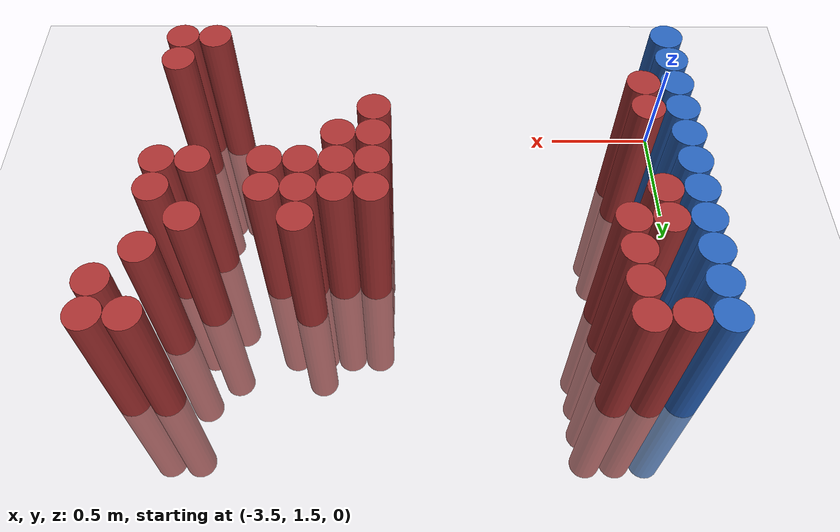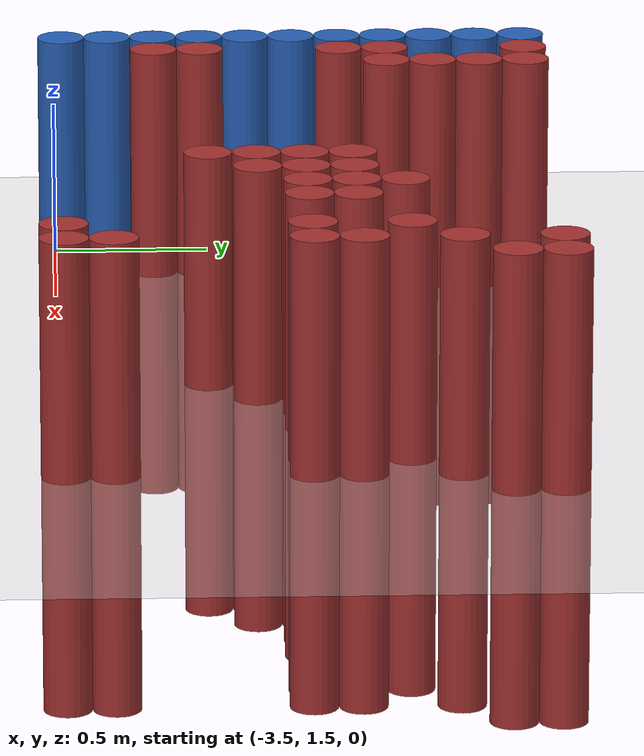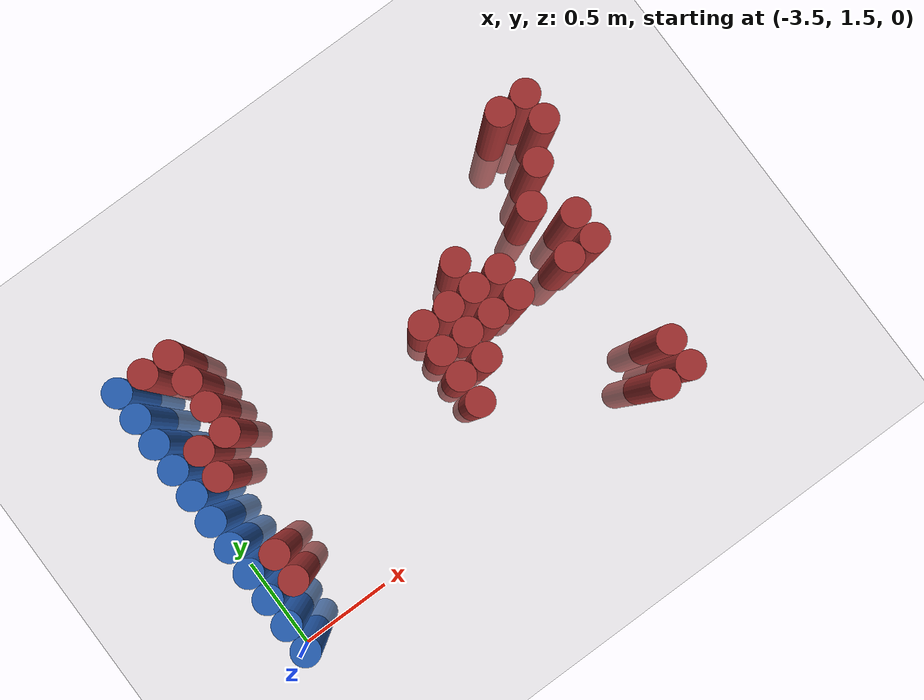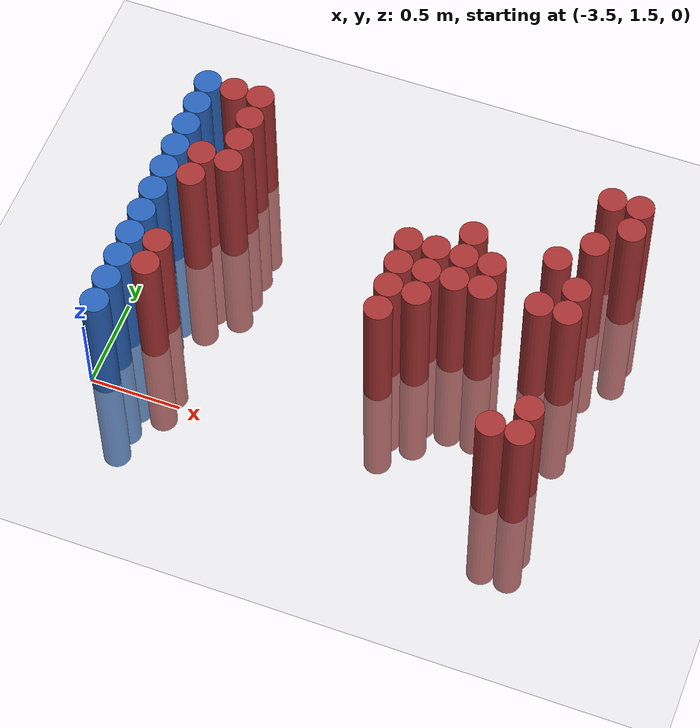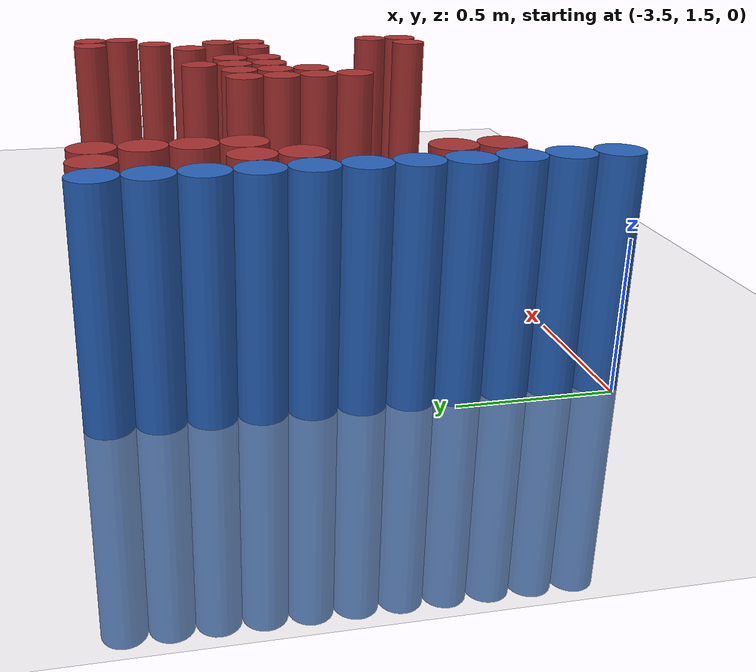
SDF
<sdf version="1.6">
 <world name="default">
  <model name="ground_plane">
   <static>1</static>
   <link name="link">
    <collision name="collision">
     <geometry><plane><normal>0 0 1</normal><size>100 100</size></plane></geometry>
     <surface><friction><ode><mu>100</mu><mu2>50</mu2></ode></friction></surface>
    </collision>
    <visual name="visual">
     <cast_shadows>0</cast_shadows>
     <geometry><plane><normal>0 0 1</normal><size>100 100</size></plane></geometry>
     <material>
      <script><uri>file://media/materials/scripts/gazebo.material</uri><name>Gazebo/Grey</name></script>
     </material>
    </visual>
   </link>
  </model>
  <model name="unit_cylinder_135">
   <static>1</static>
   <pose>-3.425000 1.525000 0.000000 0.000000 0.000000 0.000000</pose>
   <link name="link">
    <inertial>
     <mass>1</mass>
     <inertia><ixx>0.145833</ixx><ixy>0</ixy><ixz>0</ixz><iyy>0.145833</iyy><iyz>0</iyz><izz>0.125</izz></inertia>
    </inertial>
    <collision name="collision">
     <geometry><cylinder><radius>0.075000</radius><length>1.5</length></cylinder></geometry>
    </collision>
    <visual name="visual">
     <geometry><cylinder><radius>0.075000</radius><length>1.5</length></cylinder></geometry>
     <material>
      <ambient>0.152000 0.379000 0.720000 1</ambient>
      <diffuse>0.152000 0.379000 0.720000 1</diffuse>
     </material>
     <material>
      <script><name>Gazebo/Grey</name><uri>file://media/materials/scripts/gazebo.material</uri></script>
     </material>
    </visual>
   </link>
  </model>
  <model name="unit_cylinder_137">
   <static>1</static>
   <pose>-3.425000 1.675000 0.000000 0.000000 0.000000 0.000000</pose>
   <link name="link">
    <inertial>
     <mass>1</mass>
     <inertia><ixx>0.145833</ixx><ixy>0</ixy><ixz>0</ixz><iyy>0.145833</iyy><iyz>0</iyz><izz>0.125</izz></inertia>
    </inertial>
    <collision name="collision">
     <geometry><cylinder><radius>0.075000</radius><length>1.5</length></cylinder></geometry>
    </collision>
    <visual name="visual">
     <geometry><cylinder><radius>0.075000</radius><length>1.5</length></cylinder></geometry>
     <material>
      <ambient>0.152000 0.379000 0.720000 1</ambient>
      <diffuse>0.152000 0.379000 0.720000 1</diffuse>
     </material>
     <material>
      <script><name>Gazebo/Grey</name><uri>file://media/materials/scripts/gazebo.material</uri></script>
     </material>
    </visual>
   </link>
  </model>
  <model name="unit_cylinder_139">
   <static>1</static>
   <pose>-3.425000 1.825000 0.000000 0.000000 0.000000 0.000000</pose>
   <link name="link">
    <inertial>
     <mass>1</mass>
     <inertia><ixx>0.145833</ixx><ixy>0</ixy><ixz>0</ixz><iyy>0.145833</iyy><iyz>0</iyz><izz>0.125</izz></inertia>
    </inertial>
    <collision name="collision">
     <geometry><cylinder><radius>0.075000</radius><length>1.5</length></cylinder></geometry>
    </collision>
    <visual name="visual">
     <geometry><cylinder><radius>0.075000</radius><length>1.5</length></cylinder></geometry>
     <material>
      <ambient>0.152000 0.379000 0.720000 1</ambient>
      <diffuse>0.152000 0.379000 0.720000 1</diffuse>
     </material>
     <material>
      <script><name>Gazebo/Grey</name><uri>file://media/materials/scripts/gazebo.material</uri></script>
     </material>
    </visual>
   </link>
  </model>
  <model name="unit_cylinder_141">
   <static>1</static>
   <pose>-3.425000 1.975000 0.000000 0.000000 0.000000 0.000000</pose>
   <link name="link">
    <inertial>
     <mass>1</mass>
     <inertia><ixx>0.145833</ixx><ixy>0</ixy><ixz>0</ixz><iyy>0.145833</iyy><iyz>0</iyz><izz>0.125</izz></inertia>
    </inertial>
    <collision name="collision">
     <geometry><cylinder><radius>0.075000</radius><length>1.5</length></cylinder></geometry>
    </collision>
    <visual name="visual">
     <geometry><cylinder><radius>0.075000</radius><length>1.5</length></cylinder></geometry>
     <material>
      <ambient>0.152000 0.379000 0.720000 1</ambient>
      <diffuse>0.152000 0.379000 0.720000 1</diffuse>
     </material>
     <material>
      <script><name>Gazebo/Grey</name><uri>file://media/materials/scripts/gazebo.material</uri></script>
     </material>
    </visual>
   </link>
  </model>
  <model name="unit_cylinder_143">
   <static>1</static>
   <pose>-3.425000 2.125000 0.000000 0.000000 0.000000 0.000000</pose>
   <link name="link">
    <inertial>
     <mass>1</mass>
     <inertia><ixx>0.145833</ixx><ixy>0</ixy><ixz>0</ixz><iyy>0.145833</iyy><iyz>0</iyz><izz>0.125</izz></inertia>
    </inertial>
    <collision name="collision">
     <geometry><cylinder><radius>0.075000</radius><length>1.5</length></cylinder></geometry>
    </collision>
    <visual name="visual">
     <geometry><cylinder><radius>0.075000</radius><length>1.5</length></cylinder></geometry>
     <material>
      <ambient>0.152000 0.379000 0.720000 1</ambient>
      <diffuse>0.152000 0.379000 0.720000 1</diffuse>
     </material>
     <material>
      <script><name>Gazebo/Grey</name><uri>file://media/materials/scripts/gazebo.material</uri></script>
     </material>
    </visual>
   </link>
  </model>
  <model name="unit_cylinder_145">
   <static>1</static>
   <pose>-3.425000 2.275000 0.000000 0.000000 0.000000 0.000000</pose>
   <link name="link">
    <inertial>
     <mass>1</mass>
     <inertia><ixx>0.145833</ixx><ixy>0</ixy><ixz>0</ixz><iyy>0.145833</iyy><iyz>0</iyz><izz>0.125</izz></inertia>
    </inertial>
    <collision name="collision">
     <geometry><cylinder><radius>0.075000</radius><length>1.5</length></cylinder></geometry>
    </collision>
    <visual name="visual">
     <geometry><cylinder><radius>0.075000</radius><length>1.5</length></cylinder></geometry>
     <material>
      <ambient>0.152000 0.379000 0.720000 1</ambient>
      <diffuse>0.152000 0.379000 0.720000 1</diffuse>
     </material>
     <material>
      <script><name>Gazebo/Grey</name><uri>file://media/materials/scripts/gazebo.material</uri></script>
     </material>
    </visual>
   </link>
  </model>
  <model name="unit_cylinder_147">
   <static>1</static>
   <pose>-3.425000 2.425000 0.000000 0.000000 0.000000 0.000000</pose>
   <link name="link">
    <inertial>
     <mass>1</mass>
     <inertia><ixx>0.145833</ixx><ixy>0</ixy><ixz>0</ixz><iyy>0.145833</iyy><iyz>0</iyz><izz>0.125</izz></inertia>
    </inertial>
    <collision name="collision">
     <geometry><cylinder><radius>0.075000</radius><length>1.5</length></cylinder></geometry>
    </collision>
    <visual name="visual">
     <geometry><cylinder><radius>0.075000</radius><length>1.5</length></cylinder></geometry>
     <material>
      <ambient>0.152000 0.379000 0.720000 1</ambient>
      <diffuse>0.152000 0.379000 0.720000 1</diffuse>
     </material>
     <material>
      <script><name>Gazebo/Grey</name><uri>file://media/materials/scripts/gazebo.material</uri></script>
     </material>
    </visual>
   </link>
  </model>
  <model name="unit_cylinder_149">
   <static>1</static>
   <pose>-3.425000 2.575000 0.000000 0.000000 0.000000 0.000000</pose>
   <link name="link">
    <inertial>
     <mass>1</mass>
     <inertia><ixx>0.145833</ixx><ixy>0</ixy><ixz>0</ixz><iyy>0.145833</iyy><iyz>0</iyz><izz>0.125</izz></inertia>
    </inertial>
    <collision name="collision">
     <geometry><cylinder><radius>0.075000</radius><length>1.5</length></cylinder></geometry>
    </collision>
    <visual name="visual">
     <geometry><cylinder><radius>0.075000</radius><length>1.5</length></cylinder></geometry>
     <material>
      <ambient>0.152000 0.379000 0.720000 1</ambient>
      <diffuse>0.152000 0.379000 0.720000 1</diffuse>
     </material>
     <material>
      <script><name>Gazebo/Grey</name><uri>file://media/materials/scripts/gazebo.material</uri></script>
     </material>
    </visual>
   </link>
  </model>
  <model name="unit_cylinder_151">
   <static>1</static>
   <pose>-3.425000 2.725000 0.000000 0.000000 0.000000 0.000000</pose>
   <link name="link">
    <inertial>
     <mass>1</mass>
     <inertia><ixx>0.145833</ixx><ixy>0</ixy><ixz>0</ixz><iyy>0.145833</iyy><iyz>0</iyz><izz>0.125</izz></inertia>
    </inertial>
    <collision name="collision">
     <geometry><cylinder><radius>0.075000</radius><length>1.5</length></cylinder></geometry>
    </collision>
    <visual name="visual">
     <geometry><cylinder><radius>0.075000</radius><length>1.5</length></cylinder></geometry>
     <material>
      <ambient>0.152000 0.379000 0.720000 1</ambient>
      <diffuse>0.152000 0.379000 0.720000 1</diffuse>
     </material>
     <material>
      <script><name>Gazebo/Grey</name><uri>file://media/materials/scripts/gazebo.material</uri></script>
     </material>
    </visual>
   </link>
  </model>
  <model name="unit_cylinder_153">
   <static>1</static>
   <pose>-3.425000 2.875000 0.000000 0.000000 0.000000 0.000000</pose>
   <link name="link">
    <inertial>
     <mass>1</mass>
     <inertia><ixx>0.145833</ixx><ixy>0</ixy><ixz>0</ixz><iyy>0.145833</iyy><iyz>0</iyz><izz>0.125</izz></inertia>
    </inertial>
    <collision name="collision">
     <geometry><cylinder><radius>0.075000</radius><length>1.5</length></cylinder></geometry>
    </collision>
    <visual name="visual">
     <geometry><cylinder><radius>0.075000</radius><length>1.5</length></cylinder></geometry>
     <material>
      <ambient>0.152000 0.379000 0.720000 1</ambient>
      <diffuse>0.152000 0.379000 0.720000 1</diffuse>
     </material>
     <material>
      <script><name>Gazebo/Grey</name><uri>file://media/materials/scripts/gazebo.material</uri></script>
     </material>
    </visual>
   </link>
  </model>
  <model name="unit_cylinder_155">
   <static>1</static>
   <pose>-3.425000 3.025000 0.000000 0.000000 0.000000 0.000000</pose>
   <link name="link">
    <inertial>
     <mass>1</mass>
     <inertia><ixx>0.145833</ixx><ixy>0</ixy><ixz>0</ixz><iyy>0.145833</iyy><iyz>0</iyz><izz>0.125</izz></inertia>
    </inertial>
    <collision name="collision">
     <geometry><cylinder><radius>0.075000</radius><length>1.5</length></cylinder></geometry>
    </collision>
    <visual name="visual">
     <geometry><cylinder><radius>0.075000</radius><length>1.5</length></cylinder></geometry>
     <material>
      <ambient>0.152000 0.379000 0.720000 1</ambient>
      <diffuse>0.152000 0.379000 0.720000 1</diffuse>
     </material>
     <material>
      <script><name>Gazebo/Grey</name><uri>file://media/materials/scripts/gazebo.material</uri></script>
     </material>
    </visual>
   </link>
  </model>
  <model name="unit_cylinder_231">
   <static>1</static>
   <pose>-3.425000 1.525000 0.000000 0.000000 0.000000 0.000000</pose>
   <link name="link">
    <inertial>
     <mass>1</mass>
     <inertia><ixx>0.145833</ixx><ixy>0</ixy><ixz>0</ixz><iyy>0.145833</iyy><iyz>0</iyz><izz>0.125</izz></inertia>
    </inertial>
    <collision name="collision">
     <geometry><cylinder><radius>0.075000</radius><length>1.5</length></cylinder></geometry>
    </collision>
    <visual name="visual">
     <geometry><cylinder><radius>0.075000</radius><length>1.5</length></cylinder></geometry>
     <material>
      <ambient>0.152000 0.379000 0.720000 1</ambient>
      <diffuse>0.152000 0.379000 0.720000 1</diffuse>
     </material>
     <material>
      <script><name>Gazebo/Grey</name><uri>file://media/materials/scripts/gazebo.material</uri></script>
     </material>
    </visual>
   </link>
  </model>
  <model name="unit_cylinder_232">
   <static>1</static>
   <pose>-3.425000 1.675000 0.000000 0.000000 0.000000 0.000000</pose>
   <link name="link">
    <inertial>
     <mass>1</mass>
     <inertia><ixx>0.145833</ixx><ixy>0</ixy><ixz>0</ixz><iyy>0.145833</iyy><iyz>0</iyz><izz>0.125</izz></inertia>
    </inertial>
    <collision name="collision">
     <geometry><cylinder><radius>0.075000</radius><length>1.5</length></cylinder></geometry>
    </collision>
    <visual name="visual">
     <geometry><cylinder><radius>0.075000</radius><length>1.5</length></cylinder></geometry>
     <material>
      <ambient>0.152000 0.379000 0.720000 1</ambient>
      <diffuse>0.152000 0.379000 0.720000 1</diffuse>
     </material>
     <material>
      <script><name>Gazebo/Grey</name><uri>file://media/materials/scripts/gazebo.material</uri></script>
     </material>
    </visual>
   </link>
  </model>
  <model name="unit_cylinder_233">
   <static>1</static>
   <pose>-3.425000 1.825000 0.000000 0.000000 0.000000 0.000000</pose>
   <link name="link">
    <inertial>
     <mass>1</mass>
     <inertia><ixx>0.145833</ixx><ixy>0</ixy><ixz>0</ixz><iyy>0.145833</iyy><iyz>0</iyz><izz>0.125</izz></inertia>
    </inertial>
    <collision name="collision">
     <geometry><cylinder><radius>0.075000</radius><length>1.5</length></cylinder></geometry>
    </collision>
    <visual name="visual">
     <geometry><cylinder><radius>0.075000</radius><length>1.5</length></cylinder></geometry>
     <material>
      <ambient>0.152000 0.379000 0.720000 1</ambient>
      <diffuse>0.152000 0.379000 0.720000 1</diffuse>
     </material>
     <material>
      <script><name>Gazebo/Grey</name><uri>file://media/materials/scripts/gazebo.material</uri></script>
     </material>
    </visual>
   </link>
  </model>
  <model name="unit_cylinder_234">
   <static>1</static>
   <pose>-3.425000 1.975000 0.000000 0.000000 0.000000 0.000000</pose>
   <link name="link">
    <inertial>
     <mass>1</mass>
     <inertia><ixx>0.145833</ixx><ixy>0</ixy><ixz>0</ixz><iyy>0.145833</iyy><iyz>0</iyz><izz>0.125</izz></inertia>
    </inertial>
    <collision name="collision">
     <geometry><cylinder><radius>0.075000</radius><length>1.5</length></cylinder></geometry>
    </collision>
    <visual name="visual">
     <geometry><cylinder><radius>0.075000</radius><length>1.5</length></cylinder></geometry>
     <material>
      <ambient>0.152000 0.379000 0.720000 1</ambient>
      <diffuse>0.152000 0.379000 0.720000 1</diffuse>
     </material>
     <material>
      <script><name>Gazebo/Grey</name><uri>file://media/materials/scripts/gazebo.material</uri></script>
     </material>
    </visual>
   </link>
  </model>
  <model name="unit_cylinder_235">
   <static>1</static>
   <pose>-3.425000 2.125000 0.000000 0.000000 0.000000 0.000000</pose>
   <link name="link">
    <inertial>
     <mass>1</mass>
     <inertia><ixx>0.145833</ixx><ixy>0</ixy><ixz>0</ixz><iyy>0.145833</iyy><iyz>0</iyz><izz>0.125</izz></inertia>
    </inertial>
    <collision name="collision">
     <geometry><cylinder><radius>0.075000</radius><length>1.5</length></cylinder></geometry>
    </collision>
    <visual name="visual">
     <geometry><cylinder><radius>0.075000</radius><length>1.5</length></cylinder></geometry>
     <material>
      <ambient>0.152000 0.379000 0.720000 1</ambient>
      <diffuse>0.152000 0.379000 0.720000 1</diffuse>
     </material>
     <material>
      <script><name>Gazebo/Grey</name><uri>file://media/materials/scripts/gazebo.material</uri></script>
     </material>
    </visual>
   </link>
  </model>
  <model name="unit_cylinder_236">
   <static>1</static>
   <pose>-3.425000 2.275000 0.000000 0.000000 0.000000 0.000000</pose>
   <link name="link">
    <inertial>
     <mass>1</mass>
     <inertia><ixx>0.145833</ixx><ixy>0</ixy><ixz>0</ixz><iyy>0.145833</iyy><iyz>0</iyz><izz>0.125</izz></inertia>
    </inertial>
    <collision name="collision">
     <geometry><cylinder><radius>0.075000</radius><length>1.5</length></cylinder></geometry>
    </collision>
    <visual name="visual">
     <geometry><cylinder><radius>0.075000</radius><length>1.5</length></cylinder></geometry>
     <material>
      <ambient>0.152000 0.379000 0.720000 1</ambient>
      <diffuse>0.152000 0.379000 0.720000 1</diffuse>
     </material>
     <material>
      <script><name>Gazebo/Grey</name><uri>file://media/materials/scripts/gazebo.material</uri></script>
     </material>
    </visual>
   </link>
  </model>
  <model name="unit_cylinder_237">
   <static>1</static>
   <pose>-3.425000 2.425000 0.000000 0.000000 0.000000 0.000000</pose>
   <link name="link">
    <inertial>
     <mass>1</mass>
     <inertia><ixx>0.145833</ixx><ixy>0</ixy><ixz>0</ixz><iyy>0.145833</iyy><iyz>0</iyz><izz>0.125</izz></inertia>
    </inertial>
    <collision name="collision">
     <geometry><cylinder><radius>0.075000</radius><length>1.5</length></cylinder></geometry>
    </collision>
    <visual name="visual">
     <geometry><cylinder><radius>0.075000</radius><length>1.5</length></cylinder></geometry>
     <material>
      <ambient>0.152000 0.379000 0.720000 1</ambient>
      <diffuse>0.152000 0.379000 0.720000 1</diffuse>
     </material>
     <material>
      <script><name>Gazebo/Grey</name><uri>file://media/materials/scripts/gazebo.material</uri></script>
     </material>
    </visual>
   </link>
  </model>
  <model name="unit_cylinder_238">
   <static>1</static>
   <pose>-3.425000 2.575000 0.000000 0.000000 0.000000 0.000000</pose>
   <link name="link">
    <inertial>
     <mass>1</mass>
     <inertia><ixx>0.145833</ixx><ixy>0</ixy><ixz>0</ixz><iyy>0.145833</iyy><iyz>0</iyz><izz>0.125</izz></inertia>
    </inertial>
    <collision name="collision">
     <geometry><cylinder><radius>0.075000</radius><length>1.5</length></cylinder></geometry>
    </collision>
    <visual name="visual">
     <geometry><cylinder><radius>0.075000</radius><length>1.5</length></cylinder></geometry>
     <material>
      <ambient>0.152000 0.379000 0.720000 1</ambient>
      <diffuse>0.152000 0.379000 0.720000 1</diffuse>
     </material>
     <material>
      <script><name>Gazebo/Grey</name><uri>file://media/materials/scripts/gazebo.material</uri></script>
     </material>
    </visual>
   </link>
  </model>
  <model name="unit_cylinder_239">
   <static>1</static>
   <pose>-3.425000 2.725000 0.000000 0.000000 0.000000 0.000000</pose>
   <link name="link">
    <inertial>
     <mass>1</mass>
     <inertia><ixx>0.145833</ixx><ixy>0</ixy><ixz>0</ixz><iyy>0.145833</iyy><iyz>0</iyz><izz>0.125</izz></inertia>
    </inertial>
    <collision name="collision">
     <geometry><cylinder><radius>0.075000</radius><length>1.5</length></cylinder></geometry>
    </collision>
    <visual name="visual">
     <geometry><cylinder><radius>0.075000</radius><length>1.5</length></cylinder></geometry>
     <material>
      <ambient>0.152000 0.379000 0.720000 1</ambient>
      <diffuse>0.152000 0.379000 0.720000 1</diffuse>
     </material>
     <material>
      <script><name>Gazebo/Grey</name><uri>file://media/materials/scripts/gazebo.material</uri></script>
     </material>
    </visual>
   </link>
  </model>
  <model name="unit_cylinder_240">
   <static>1</static>
   <pose>-3.425000 2.875000 0.000000 0.000000 0.000000 0.000000</pose>
   <link name="link">
    <inertial>
     <mass>1</mass>
     <inertia><ixx>0.145833</ixx><ixy>0</ixy><ixz>0</ixz><iyy>0.145833</iyy><iyz>0</iyz><izz>0.125</izz></inertia>
    </inertial>
    <collision name="collision">
     <geometry><cylinder><radius>0.075000</radius><length>1.5</length></cylinder></geometry>
    </collision>
    <visual name="visual">
     <geometry><cylinder><radius>0.075000</radius><length>1.5</length></cylinder></geometry>
     <material>
      <ambient>0.152000 0.379000 0.720000 1</ambient>
      <diffuse>0.152000 0.379000 0.720000 1</diffuse>
     </material>
     <material>
      <script><name>Gazebo/Grey</name><uri>file://media/materials/scripts/gazebo.material</uri></script>
     </material>
    </visual>
   </link>
  </model>
  <model name="unit_cylinder_241">
   <static>1</static>
   <pose>-3.425000 3.025000 0.000000 0.000000 0.000000 0.000000</pose>
   <link name="link">
    <inertial>
     <mass>1</mass>
     <inertia><ixx>0.145833</ixx><ixy>0</ixy><ixz>0</ixz><iyy>0.145833</iyy><iyz>0</iyz><izz>0.125</izz></inertia>
    </inertial>
    <collision name="collision">
     <geometry><cylinder><radius>0.075000</radius><length>1.5</length></cylinder></geometry>
    </collision>
    <visual name="visual">
     <geometry><cylinder><radius>0.075000</radius><length>1.5</length></cylinder></geometry>
     <material>
      <ambient>0.152000 0.379000 0.720000 1</ambient>
      <diffuse>0.152000 0.379000 0.720000 1</diffuse>
     </material>
     <material>
      <script><name>Gazebo/Grey</name><uri>file://media/materials/scripts/gazebo.material</uri></script>
     </material>
    </visual>
   </link>
  </model>
  <model name="unit_cylinder_267">
   <static>1</static>
   <pose>-3.275000 1.825000 0.000000 0.000000 0.000000 0.000000</pose>
   <link name="link">
    <inertial>
     <mass>1</mass>
     <inertia><ixx>0.145833</ixx><ixy>0</ixy><ixz>0</ixz><iyy>0.145833</iyy><iyz>0</iyz><izz>0.125</izz></inertia>
    </inertial>
    <collision name="collision">
     <geometry><cylinder><radius>0.075000</radius><length>1.5</length></cylinder></geometry>
    </collision>
    <visual name="visual">
     <geometry><cylinder><radius>0.075000</radius><length>1.5</length></cylinder></geometry>
     <material>
      <ambient>0.648000 0.192000 0.192000 1</ambient>
      <diffuse>0.648000 0.192000 0.192000 1</diffuse>
     </material>
     <material>
      <script><name>Gazebo/Grey</name><uri>file://media/materials/scripts/gazebo.material</uri></script>
     </material>
    </visual>
   </link>
  </model>
  <model name="unit_cylinder_268">
   <static>1</static>
   <pose>-3.275000 1.975000 0.000000 0.000000 0.000000 0.000000</pose>
   <link name="link">
    <inertial>
     <mass>1</mass>
     <inertia><ixx>0.145833</ixx><ixy>0</ixy><ixz>0</ixz><iyy>0.145833</iyy><iyz>0</iyz><izz>0.125</izz></inertia>
    </inertial>
    <collision name="collision">
     <geometry><cylinder><radius>0.075000</radius><length>1.5</length></cylinder></geometry>
    </collision>
    <visual name="visual">
     <geometry><cylinder><radius>0.075000</radius><length>1.5</length></cylinder></geometry>
     <material>
      <ambient>0.648000 0.192000 0.192000 1</ambient>
      <diffuse>0.648000 0.192000 0.192000 1</diffuse>
     </material>
     <material>
      <script><name>Gazebo/Grey</name><uri>file://media/materials/scripts/gazebo.material</uri></script>
     </material>
    </visual>
   </link>
  </model>
  <model name="unit_cylinder_269">
   <static>1</static>
   <pose>-3.275000 2.425000 0.000000 0.000000 0.000000 0.000000</pose>
   <link name="link">
    <inertial>
     <mass>1</mass>
     <inertia><ixx>0.145833</ixx><ixy>0</ixy><ixz>0</ixz><iyy>0.145833</iyy><iyz>0</iyz><izz>0.125</izz></inertia>
    </inertial>
    <collision name="collision">
     <geometry><cylinder><radius>0.075000</radius><length>1.5</length></cylinder></geometry>
    </collision>
    <visual name="visual">
     <geometry><cylinder><radius>0.075000</radius><length>1.5</length></cylinder></geometry>
     <material>
      <ambient>0.648000 0.192000 0.192000 1</ambient>
      <diffuse>0.648000 0.192000 0.192000 1</diffuse>
     </material>
     <material>
      <script><name>Gazebo/Grey</name><uri>file://media/materials/scripts/gazebo.material</uri></script>
     </material>
    </visual>
   </link>
  </model>
  <model name="unit_cylinder_270">
   <static>1</static>
   <pose>-3.275000 2.575000 0.000000 0.000000 0.000000 0.000000</pose>
   <link name="link">
    <inertial>
     <mass>1</mass>
     <inertia><ixx>0.145833</ixx><ixy>0</ixy><ixz>0</ixz><iyy>0.145833</iyy><iyz>0</iyz><izz>0.125</izz></inertia>
    </inertial>
    <collision name="collision">
     <geometry><cylinder><radius>0.075000</radius><length>1.5</length></cylinder></geometry>
    </collision>
    <visual name="visual">
     <geometry><cylinder><radius>0.075000</radius><length>1.5</length></cylinder></geometry>
     <material>
      <ambient>0.648000 0.192000 0.192000 1</ambient>
      <diffuse>0.648000 0.192000 0.192000 1</diffuse>
     </material>
     <material>
      <script><name>Gazebo/Grey</name><uri>file://media/materials/scripts/gazebo.material</uri></script>
     </material>
    </visual>
   </link>
  </model>
  <model name="unit_cylinder_271">
   <static>1</static>
   <pose>-3.275000 3.025000 0.000000 0.000000 0.000000 0.000000</pose>
   <link name="link">
    <inertial>
     <mass>1</mass>
     <inertia><ixx>0.145833</ixx><ixy>0</ixy><ixz>0</ixz><iyy>0.145833</iyy><iyz>0</iyz><izz>0.125</izz></inertia>
    </inertial>
    <collision name="collision">
     <geometry><cylinder><radius>0.075000</radius><length>1.5</length></cylinder></geometry>
    </collision>
    <visual name="visual">
     <geometry><cylinder><radius>0.075000</radius><length>1.5</length></cylinder></geometry>
     <material>
      <ambient>0.648000 0.192000 0.192000 1</ambient>
      <diffuse>0.648000 0.192000 0.192000 1</diffuse>
     </material>
     <material>
      <script><name>Gazebo/Grey</name><uri>file://media/materials/scripts/gazebo.material</uri></script>
     </material>
    </visual>
   </link>
  </model>
  <model name="unit_cylinder_285">
   <static>1</static>
   <pose>-3.125000 2.575000 0.000000 0.000000 0.000000 0.000000</pose>
   <link name="link">
    <inertial>
     <mass>1</mass>
     <inertia><ixx>0.145833</ixx><ixy>0</ixy><ixz>0</ixz><iyy>0.145833</iyy><iyz>0</iyz><izz>0.125</izz></inertia>
    </inertial>
    <collision name="collision">
     <geometry><cylinder><radius>0.075000</radius><length>1.5</length></cylinder></geometry>
    </collision>
    <visual name="visual">
     <geometry><cylinder><radius>0.075000</radius><length>1.5</length></cylinder></geometry>
     <material>
      <ambient>0.648000 0.192000 0.192000 1</ambient>
      <diffuse>0.648000 0.192000 0.192000 1</diffuse>
     </material>
     <material>
      <script><name>Gazebo/Grey</name><uri>file://media/materials/scripts/gazebo.material</uri></script>
     </material>
    </visual>
   </link>
  </model>
  <model name="unit_cylinder_286">
   <static>1</static>
   <pose>-3.125000 2.725000 0.000000 0.000000 0.000000 0.000000</pose>
   <link name="link">
    <inertial>
     <mass>1</mass>
     <inertia><ixx>0.145833</ixx><ixy>0</ixy><ixz>0</ixz><iyy>0.145833</iyy><iyz>0</iyz><izz>0.125</izz></inertia>
    </inertial>
    <collision name="collision">
     <geometry><cylinder><radius>0.075000</radius><length>1.5</length></cylinder></geometry>
    </collision>
    <visual name="visual">
     <geometry><cylinder><radius>0.075000</radius><length>1.5</length></cylinder></geometry>
     <material>
      <ambient>0.648000 0.192000 0.192000 1</ambient>
      <diffuse>0.648000 0.192000 0.192000 1</diffuse>
     </material>
     <material>
      <script><name>Gazebo/Grey</name><uri>file://media/materials/scripts/gazebo.material</uri></script>
     </material>
    </visual>
   </link>
  </model>
  <model name="unit_cylinder_287">
   <static>1</static>
   <pose>-3.125000 2.875000 0.000000 0.000000 0.000000 0.000000</pose>
   <link name="link">
    <inertial>
     <mass>1</mass>
     <inertia><ixx>0.145833</ixx><ixy>0</ixy><ixz>0</ixz><iyy>0.145833</iyy><iyz>0</iyz><izz>0.125</izz></inertia>
    </inertial>
    <collision name="collision">
     <geometry><cylinder><radius>0.075000</radius><length>1.5</length></cylinder></geometry>
    </collision>
    <visual name="visual">
     <geometry><cylinder><radius>0.075000</radius><length>1.5</length></cylinder></geometry>
     <material>
      <ambient>0.648000 0.192000 0.192000 1</ambient>
      <diffuse>0.648000 0.192000 0.192000 1</diffuse>
     </material>
     <material>
      <script><name>Gazebo/Grey</name><uri>file://media/materials/scripts/gazebo.material</uri></script>
     </material>
    </visual>
   </link>
  </model>
  <model name="unit_cylinder_288">
   <static>1</static>
   <pose>-3.125000 3.025000 0.000000 0.000000 0.000000 0.000000</pose>
   <link name="link">
    <inertial>
     <mass>1</mass>
     <inertia><ixx>0.145833</ixx><ixy>0</ixy><ixz>0</ixz><iyy>0.145833</iyy><iyz>0</iyz><izz>0.125</izz></inertia>
    </inertial>
    <collision name="collision">
     <geometry><cylinder><radius>0.075000</radius><length>1.5</length></cylinder></geometry>
    </collision>
    <visual name="visual">
     <geometry><cylinder><radius>0.075000</radius><length>1.5</length></cylinder></geometry>
     <material>
      <ambient>0.648000 0.192000 0.192000 1</ambient>
      <diffuse>0.648000 0.192000 0.192000 1</diffuse>
     </material>
     <material>
      <script><name>Gazebo/Grey</name><uri>file://media/materials/scripts/gazebo.material</uri></script>
     </material>
    </visual>
   </link>
  </model>
  <model name="unit_cylinder_322">
   <static>1</static>
   <pose>-2.075000 1.975000 0.000000 0.000000 0.000000 0.000000</pose>
   <link name="link">
    <inertial>
     <mass>1</mass>
     <inertia><ixx>0.145833</ixx><ixy>0</ixy><ixz>0</ixz><iyy>0.145833</iyy><iyz>0</iyz><izz>0.125</izz></inertia>
    </inertial>
    <collision name="collision">
     <geometry><cylinder><radius>0.075000</radius><length>1.5</length></cylinder></geometry>
    </collision>
    <visual name="visual">
     <geometry><cylinder><radius>0.075000</radius><length>1.5</length></cylinder></geometry>
     <material>
      <ambient>0.648000 0.192000 0.192000 1</ambient>
      <diffuse>0.648000 0.192000 0.192000 1</diffuse>
     </material>
     <material>
      <script><name>Gazebo/Grey</name><uri>file://media/materials/scripts/gazebo.material</uri></script>
     </material>
    </visual>
   </link>
  </model>
  <model name="unit_cylinder_323">
   <static>1</static>
   <pose>-2.075000 2.125000 0.000000 0.000000 0.000000 0.000000</pose>
   <link name="link">
    <inertial>
     <mass>1</mass>
     <inertia><ixx>0.145833</ixx><ixy>0</ixy><ixz>0</ixz><iyy>0.145833</iyy><iyz>0</iyz><izz>0.125</izz></inertia>
    </inertial>
    <collision name="collision">
     <geometry><cylinder><radius>0.075000</radius><length>1.5</length></cylinder></geometry>
    </collision>
    <visual name="visual">
     <geometry><cylinder><radius>0.075000</radius><length>1.5</length></cylinder></geometry>
     <material>
      <ambient>0.648000 0.192000 0.192000 1</ambient>
      <diffuse>0.648000 0.192000 0.192000 1</diffuse>
     </material>
     <material>
      <script><name>Gazebo/Grey</name><uri>file://media/materials/scripts/gazebo.material</uri></script>
     </material>
    </visual>
   </link>
  </model>
  <model name="unit_cylinder_324">
   <static>1</static>
   <pose>-2.075000 2.275000 0.000000 0.000000 0.000000 0.000000</pose>
   <link name="link">
    <inertial>
     <mass>1</mass>
     <inertia><ixx>0.145833</ixx><ixy>0</ixy><ixz>0</ixz><iyy>0.145833</iyy><iyz>0</iyz><izz>0.125</izz></inertia>
    </inertial>
    <collision name="collision">
     <geometry><cylinder><radius>0.075000</radius><length>1.5</length></cylinder></geometry>
    </collision>
    <visual name="visual">
     <geometry><cylinder><radius>0.075000</radius><length>1.5</length></cylinder></geometry>
     <material>
      <ambient>0.648000 0.192000 0.192000 1</ambient>
      <diffuse>0.648000 0.192000 0.192000 1</diffuse>
     </material>
     <material>
      <script><name>Gazebo/Grey</name><uri>file://media/materials/scripts/gazebo.material</uri></script>
     </material>
    </visual>
   </link>
  </model>
  <model name="unit_cylinder_325">
   <static>1</static>
   <pose>-2.075000 2.425000 0.000000 0.000000 0.000000 0.000000</pose>
   <link name="link">
    <inertial>
     <mass>1</mass>
     <inertia><ixx>0.145833</ixx><ixy>0</ixy><ixz>0</ixz><iyy>0.145833</iyy><iyz>0</iyz><izz>0.125</izz></inertia>
    </inertial>
    <collision name="collision">
     <geometry><cylinder><radius>0.075000</radius><length>1.5</length></cylinder></geometry>
    </collision>
    <visual name="visual">
     <geometry><cylinder><radius>0.075000</radius><length>1.5</length></cylinder></geometry>
     <material>
      <ambient>0.648000 0.192000 0.192000 1</ambient>
      <diffuse>0.648000 0.192000 0.192000 1</diffuse>
     </material>
     <material>
      <script><name>Gazebo/Grey</name><uri>file://media/materials/scripts/gazebo.material</uri></script>
     </material>
    </visual>
   </link>
  </model>
  <model name="unit_cylinder_327">
   <static>1</static>
   <pose>-1.925000 2.125000 0.000000 0.000000 0.000000 0.000000</pose>
   <link name="link">
    <inertial>
     <mass>1</mass>
     <inertia><ixx>0.145833</ixx><ixy>0</ixy><ixz>0</ixz><iyy>0.145833</iyy><iyz>0</iyz><izz>0.125</izz></inertia>
    </inertial>
    <collision name="collision">
     <geometry><cylinder><radius>0.075000</radius><length>1.5</length></cylinder></geometry>
    </collision>
    <visual name="visual">
     <geometry><cylinder><radius>0.075000</radius><length>1.5</length></cylinder></geometry>
     <material>
      <ambient>0.648000 0.192000 0.192000 1</ambient>
      <diffuse>0.648000 0.192000 0.192000 1</diffuse>
     </material>
     <material>
      <script><name>Gazebo/Grey</name><uri>file://media/materials/scripts/gazebo.material</uri></script>
     </material>
    </visual>
   </link>
  </model>
  <model name="unit_cylinder_328">
   <static>1</static>
   <pose>-1.925000 2.275000 0.000000 0.000000 0.000000 0.000000</pose>
   <link name="link">
    <inertial>
     <mass>1</mass>
     <inertia><ixx>0.145833</ixx><ixy>0</ixy><ixz>0</ixz><iyy>0.145833</iyy><iyz>0</iyz><izz>0.125</izz></inertia>
    </inertial>
    <collision name="collision">
     <geometry><cylinder><radius>0.075000</radius><length>1.5</length></cylinder></geometry>
    </collision>
    <visual name="visual">
     <geometry><cylinder><radius>0.075000</radius><length>1.5</length></cylinder></geometry>
     <material>
      <ambient>0.648000 0.192000 0.192000 1</ambient>
      <diffuse>0.648000 0.192000 0.192000 1</diffuse>
     </material>
     <material>
      <script><name>Gazebo/Grey</name><uri>file://media/materials/scripts/gazebo.material</uri></script>
     </material>
    </visual>
   </link>
  </model>
  <model name="unit_cylinder_329">
   <static>1</static>
   <pose>-1.925000 2.425000 0.000000 0.000000 0.000000 0.000000</pose>
   <link name="link">
    <inertial>
     <mass>1</mass>
     <inertia><ixx>0.145833</ixx><ixy>0</ixy><ixz>0</ixz><iyy>0.145833</iyy><iyz>0</iyz><izz>0.125</izz></inertia>
    </inertial>
    <collision name="collision">
     <geometry><cylinder><radius>0.075000</radius><length>1.5</length></cylinder></geometry>
    </collision>
    <visual name="visual">
     <geometry><cylinder><radius>0.075000</radius><length>1.5</length></cylinder></geometry>
     <material>
      <ambient>0.648000 0.192000 0.192000 1</ambient>
      <diffuse>0.648000 0.192000 0.192000 1</diffuse>
     </material>
     <material>
      <script><name>Gazebo/Grey</name><uri>file://media/materials/scripts/gazebo.material</uri></script>
     </material>
    </visual>
   </link>
  </model>
  <model name="unit_cylinder_333">
   <static>1</static>
   <pose>-1.775000 2.275000 0.000000 0.000000 0.000000 0.000000</pose>
   <link name="link">
    <inertial>
     <mass>1</mass>
     <inertia><ixx>0.145833</ixx><ixy>0</ixy><ixz>0</ixz><iyy>0.145833</iyy><iyz>0</iyz><izz>0.125</izz></inertia>
    </inertial>
    <collision name="collision">
     <geometry><cylinder><radius>0.075000</radius><length>1.5</length></cylinder></geometry>
    </collision>
    <visual name="visual">
     <geometry><cylinder><radius>0.075000</radius><length>1.5</length></cylinder></geometry>
     <material>
      <ambient>0.648000 0.192000 0.192000 1</ambient>
      <diffuse>0.648000 0.192000 0.192000 1</diffuse>
     </material>
     <material>
      <script><name>Gazebo/Grey</name><uri>file://media/materials/scripts/gazebo.material</uri></script>
     </material>
    </visual>
   </link>
  </model>
  <model name="unit_cylinder_334">
   <static>1</static>
   <pose>-1.775000 2.425000 0.000000 0.000000 0.000000 0.000000</pose>
   <link name="link">
    <inertial>
     <mass>1</mass>
     <inertia><ixx>0.145833</ixx><ixy>0</ixy><ixz>0</ixz><iyy>0.145833</iyy><iyz>0</iyz><izz>0.125</izz></inertia>
    </inertial>
    <collision name="collision">
     <geometry><cylinder><radius>0.075000</radius><length>1.5</length></cylinder></geometry>
    </collision>
    <visual name="visual">
     <geometry><cylinder><radius>0.075000</radius><length>1.5</length></cylinder></geometry>
     <material>
      <ambient>0.648000 0.192000 0.192000 1</ambient>
      <diffuse>0.648000 0.192000 0.192000 1</diffuse>
     </material>
     <material>
      <script><name>Gazebo/Grey</name><uri>file://media/materials/scripts/gazebo.material</uri></script>
     </material>
    </visual>
   </link>
  </model>
  <model name="unit_cylinder_335">
   <static>1</static>
   <pose>-1.775000 2.575000 0.000000 0.000000 0.000000 0.000000</pose>
   <link name="link">
    <inertial>
     <mass>1</mass>
     <inertia><ixx>0.145833</ixx><ixy>0</ixy><ixz>0</ixz><iyy>0.145833</iyy><iyz>0</iyz><izz>0.125</izz></inertia>
    </inertial>
    <collision name="collision">
     <geometry><cylinder><radius>0.075000</radius><length>1.5</length></cylinder></geometry>
    </collision>
    <visual name="visual">
     <geometry><cylinder><radius>0.075000</radius><length>1.5</length></cylinder></geometry>
     <material>
      <ambient>0.648000 0.192000 0.192000 1</ambient>
      <diffuse>0.648000 0.192000 0.192000 1</diffuse>
     </material>
     <material>
      <script><name>Gazebo/Grey</name><uri>file://media/materials/scripts/gazebo.material</uri></script>
     </material>
    </visual>
   </link>
  </model>
  <model name="unit_cylinder_341">
   <static>1</static>
   <pose>-1.625000 2.275000 0.000000 0.000000 0.000000 0.000000</pose>
   <link name="link">
    <inertial>
     <mass>1</mass>
     <inertia><ixx>0.145833</ixx><ixy>0</ixy><ixz>0</ixz><iyy>0.145833</iyy><iyz>0</iyz><izz>0.125</izz></inertia>
    </inertial>
    <collision name="collision">
     <geometry><cylinder><radius>0.075000</radius><length>1.5</length></cylinder></geometry>
    </collision>
    <visual name="visual">
     <geometry><cylinder><radius>0.075000</radius><length>1.5</length></cylinder></geometry>
     <material>
      <ambient>0.648000 0.192000 0.192000 1</ambient>
      <diffuse>0.648000 0.192000 0.192000 1</diffuse>
     </material>
     <material>
      <script><name>Gazebo/Grey</name><uri>file://media/materials/scripts/gazebo.material</uri></script>
     </material>
    </visual>
   </link>
  </model>
  <model name="unit_cylinder_342">
   <static>1</static>
   <pose>-1.625000 2.425000 0.000000 0.000000 0.000000 0.000000</pose>
   <link name="link">
    <inertial>
     <mass>1</mass>
     <inertia><ixx>0.145833</ixx><ixy>0</ixy><ixz>0</ixz><iyy>0.145833</iyy><iyz>0</iyz><izz>0.125</izz></inertia>
    </inertial>
    <collision name="collision">
     <geometry><cylinder><radius>0.075000</radius><length>1.5</length></cylinder></geometry>
    </collision>
    <visual name="visual">
     <geometry><cylinder><radius>0.075000</radius><length>1.5</length></cylinder></geometry>
     <material>
      <ambient>0.648000 0.192000 0.192000 1</ambient>
      <diffuse>0.648000 0.192000 0.192000 1</diffuse>
     </material>
     <material>
      <script><name>Gazebo/Grey</name><uri>file://media/materials/scripts/gazebo.material</uri></script>
     </material>
    </visual>
   </link>
  </model>
  <model name="unit_cylinder_348">
   <static>1</static>
   <pose>-1.325000 1.525000 0.000000 0.000000 0.000000 0.000000</pose>
   <link name="link">
    <inertial>
     <mass>1</mass>
     <inertia><ixx>0.145833</ixx><ixy>0</ixy><ixz>0</ixz><iyy>0.145833</iyy><iyz>0</iyz><izz>0.125</izz></inertia>
    </inertial>
    <collision name="collision">
     <geometry><cylinder><radius>0.075000</radius><length>1.5</length></cylinder></geometry>
    </collision>
    <visual name="visual">
     <geometry><cylinder><radius>0.075000</radius><length>1.5</length></cylinder></geometry>
     <material>
      <ambient>0.648000 0.192000 0.192000 1</ambient>
      <diffuse>0.648000 0.192000 0.192000 1</diffuse>
     </material>
     <material>
      <script><name>Gazebo/Grey</name><uri>file://media/materials/scripts/gazebo.material</uri></script>
     </material>
    </visual>
   </link>
  </model>
  <model name="unit_cylinder_349">
   <static>1</static>
   <pose>-1.325000 2.275000 0.000000 0.000000 0.000000 0.000000</pose>
   <link name="link">
    <inertial>
     <mass>1</mass>
     <inertia><ixx>0.145833</ixx><ixy>0</ixy><ixz>0</ixz><iyy>0.145833</iyy><iyz>0</iyz><izz>0.125</izz></inertia>
    </inertial>
    <collision name="collision">
     <geometry><cylinder><radius>0.075000</radius><length>1.5</length></cylinder></geometry>
    </collision>
    <visual name="visual">
     <geometry><cylinder><radius>0.075000</radius><length>1.5</length></cylinder></geometry>
     <material>
      <ambient>0.648000 0.192000 0.192000 1</ambient>
      <diffuse>0.648000 0.192000 0.192000 1</diffuse>
     </material>
     <material>
      <script><name>Gazebo/Grey</name><uri>file://media/materials/scripts/gazebo.material</uri></script>
     </material>
    </visual>
   </link>
  </model>
  <model name="unit_cylinder_350">
   <static>1</static>
   <pose>-1.325000 2.575000 0.000000 0.000000 0.000000 0.000000</pose>
   <link name="link">
    <inertial>
     <mass>1</mass>
     <inertia><ixx>0.145833</ixx><ixy>0</ixy><ixz>0</ixz><iyy>0.145833</iyy><iyz>0</iyz><izz>0.125</izz></inertia>
    </inertial>
    <collision name="collision">
     <geometry><cylinder><radius>0.075000</radius><length>1.5</length></cylinder></geometry>
    </collision>
    <visual name="visual">
     <geometry><cylinder><radius>0.075000</radius><length>1.5</length></cylinder></geometry>
     <material>
      <ambient>0.648000 0.192000 0.192000 1</ambient>
      <diffuse>0.648000 0.192000 0.192000 1</diffuse>
     </material>
     <material>
      <script><name>Gazebo/Grey</name><uri>file://media/materials/scripts/gazebo.material</uri></script>
     </material>
    </visual>
   </link>
  </model>
  <model name="unit_cylinder_357">
   <static>1</static>
   <pose>-1.175000 1.525000 0.000000 0.000000 0.000000 0.000000</pose>
   <link name="link">
    <inertial>
     <mass>1</mass>
     <inertia><ixx>0.145833</ixx><ixy>0</ixy><ixz>0</ixz><iyy>0.145833</iyy><iyz>0</iyz><izz>0.125</izz></inertia>
    </inertial>
    <collision name="collision">
     <geometry><cylinder><radius>0.075000</radius><length>1.5</length></cylinder></geometry>
    </collision>
    <visual name="visual">
     <geometry><cylinder><radius>0.075000</radius><length>1.5</length></cylinder></geometry>
     <material>
      <ambient>0.648000 0.192000 0.192000 1</ambient>
      <diffuse>0.648000 0.192000 0.192000 1</diffuse>
     </material>
     <material>
      <script><name>Gazebo/Grey</name><uri>file://media/materials/scripts/gazebo.material</uri></script>
     </material>
    </visual>
   </link>
  </model>
  <model name="unit_cylinder_358">
   <static>1</static>
   <pose>-1.175000 1.675000 0.000000 0.000000 0.000000 0.000000</pose>
   <link name="link">
    <inertial>
     <mass>1</mass>
     <inertia><ixx>0.145833</ixx><ixy>0</ixy><ixz>0</ixz><iyy>0.145833</iyy><iyz>0</iyz><izz>0.125</izz></inertia>
    </inertial>
    <collision name="collision">
     <geometry><cylinder><radius>0.075000</radius><length>1.5</length></cylinder></geometry>
    </collision>
    <visual name="visual">
     <geometry><cylinder><radius>0.075000</radius><length>1.5</length></cylinder></geometry>
     <material>
      <ambient>0.648000 0.192000 0.192000 1</ambient>
      <diffuse>0.648000 0.192000 0.192000 1</diffuse>
     </material>
     <material>
      <script><name>Gazebo/Grey</name><uri>file://media/materials/scripts/gazebo.material</uri></script>
     </material>
    </visual>
   </link>
  </model>
  <model name="unit_cylinder_359">
   <static>1</static>
   <pose>-1.175000 2.275000 0.000000 0.000000 0.000000 0.000000</pose>
   <link name="link">
    <inertial>
     <mass>1</mass>
     <inertia><ixx>0.145833</ixx><ixy>0</ixy><ixz>0</ixz><iyy>0.145833</iyy><iyz>0</iyz><izz>0.125</izz></inertia>
    </inertial>
    <collision name="collision">
     <geometry><cylinder><radius>0.075000</radius><length>1.5</length></cylinder></geometry>
    </collision>
    <visual name="visual">
     <geometry><cylinder><radius>0.075000</radius><length>1.5</length></cylinder></geometry>
     <material>
      <ambient>0.648000 0.192000 0.192000 1</ambient>
      <diffuse>0.648000 0.192000 0.192000 1</diffuse>
     </material>
     <material>
      <script><name>Gazebo/Grey</name><uri>file://media/materials/scripts/gazebo.material</uri></script>
     </material>
    </visual>
   </link>
  </model>
  <model name="unit_cylinder_360">
   <static>1</static>
   <pose>-1.175000 2.425000 0.000000 0.000000 0.000000 0.000000</pose>
   <link name="link">
    <inertial>
     <mass>1</mass>
     <inertia><ixx>0.145833</ixx><ixy>0</ixy><ixz>0</ixz><iyy>0.145833</iyy><iyz>0</iyz><izz>0.125</izz></inertia>
    </inertial>
    <collision name="collision">
     <geometry><cylinder><radius>0.075000</radius><length>1.5</length></cylinder></geometry>
    </collision>
    <visual name="visual">
     <geometry><cylinder><radius>0.075000</radius><length>1.5</length></cylinder></geometry>
     <material>
      <ambient>0.648000 0.192000 0.192000 1</ambient>
      <diffuse>0.648000 0.192000 0.192000 1</diffuse>
     </material>
     <material>
      <script><name>Gazebo/Grey</name><uri>file://media/materials/scripts/gazebo.material</uri></script>
     </material>
    </visual>
   </link>
  </model>
  <model name="unit_cylinder_361">
   <static>1</static>
   <pose>-1.175000 2.725000 0.000000 0.000000 0.000000 0.000000</pose>
   <link name="link">
    <inertial>
     <mass>1</mass>
     <inertia><ixx>0.145833</ixx><ixy>0</ixy><ixz>0</ixz><iyy>0.145833</iyy><iyz>0</iyz><izz>0.125</izz></inertia>
    </inertial>
    <collision name="collision">
     <geometry><cylinder><radius>0.075000</radius><length>1.5</length></cylinder></geometry>
    </collision>
    <visual name="visual">
     <geometry><cylinder><radius>0.075000</radius><length>1.5</length></cylinder></geometry>
     <material>
      <ambient>0.648000 0.192000 0.192000 1</ambient>
      <diffuse>0.648000 0.192000 0.192000 1</diffuse>
     </material>
     <material>
      <script><name>Gazebo/Grey</name><uri>file://media/materials/scripts/gazebo.material</uri></script>
     </material>
    </visual>
   </link>
  </model>
  <model name="unit_cylinder_362">
   <static>1</static>
   <pose>-1.175000 3.025000 0.000000 0.000000 0.000000 0.000000</pose>
   <link name="link">
    <inertial>
     <mass>1</mass>
     <inertia><ixx>0.145833</ixx><ixy>0</ixy><ixz>0</ixz><iyy>0.145833</iyy><iyz>0</iyz><izz>0.125</izz></inertia>
    </inertial>
    <collision name="collision">
     <geometry><cylinder><radius>0.075000</radius><length>1.5</length></cylinder></geometry>
    </collision>
    <visual name="visual">
     <geometry><cylinder><radius>0.075000</radius><length>1.5</length></cylinder></geometry>
     <material>
      <ambient>0.648000 0.192000 0.192000 1</ambient>
      <diffuse>0.648000 0.192000 0.192000 1</diffuse>
     </material>
     <material>
      <script><name>Gazebo/Grey</name><uri>file://media/materials/scripts/gazebo.material</uri></script>
     </material>
    </visual>
   </link>
  </model>
  <model name="unit_cylinder_374">
   <static>1</static>
   <pose>-1.025000 2.875000 0.000000 0.000000 0.000000 0.000000</pose>
   <link name="link">
    <inertial>
     <mass>1</mass>
     <inertia><ixx>0.145833</ixx><ixy>0</ixy><ixz>0</ixz><iyy>0.145833</iyy><iyz>0</iyz><izz>0.125</izz></inertia>
    </inertial>
    <collision name="collision">
     <geometry><cylinder><radius>0.075000</radius><length>1.5</length></cylinder></geometry>
    </collision>
    <visual name="visual">
     <geometry><cylinder><radius>0.075000</radius><length>1.5</length></cylinder></geometry>
     <material>
      <ambient>0.648000 0.192000 0.192000 1</ambient>
      <diffuse>0.648000 0.192000 0.192000 1</diffuse>
     </material>
     <material>
      <script><name>Gazebo/Grey</name><uri>file://media/materials/scripts/gazebo.material</uri></script>
     </material>
    </visual>
   </link>
  </model>
  <model name="unit_cylinder_375">
   <static>1</static>
   <pose>-1.025000 3.025000 0.000000 0.000000 0.000000 0.000000</pose>
   <link name="link">
    <inertial>
     <mass>1</mass>
     <inertia><ixx>0.145833</ixx><ixy>0</ixy><ixz>0</ixz><iyy>0.145833</iyy><iyz>0</iyz><izz>0.125</izz></inertia>
    </inertial>
    <collision name="collision">
     <geometry><cylinder><radius>0.075000</radius><length>1.5</length></cylinder></geometry>
    </collision>
    <visual name="visual">
     <geometry><cylinder><radius>0.075000</radius><length>1.5</length></cylinder></geometry>
     <material>
      <ambient>0.648000 0.192000 0.192000 1</ambient>
      <diffuse>0.648000 0.192000 0.192000 1</diffuse>
     </material>
     <material>
      <script><name>Gazebo/Grey</name><uri>file://media/materials/scripts/gazebo.material</uri></script>
     </material>
    </visual>
   </link>
  </model>
 </world>
</sdf>
